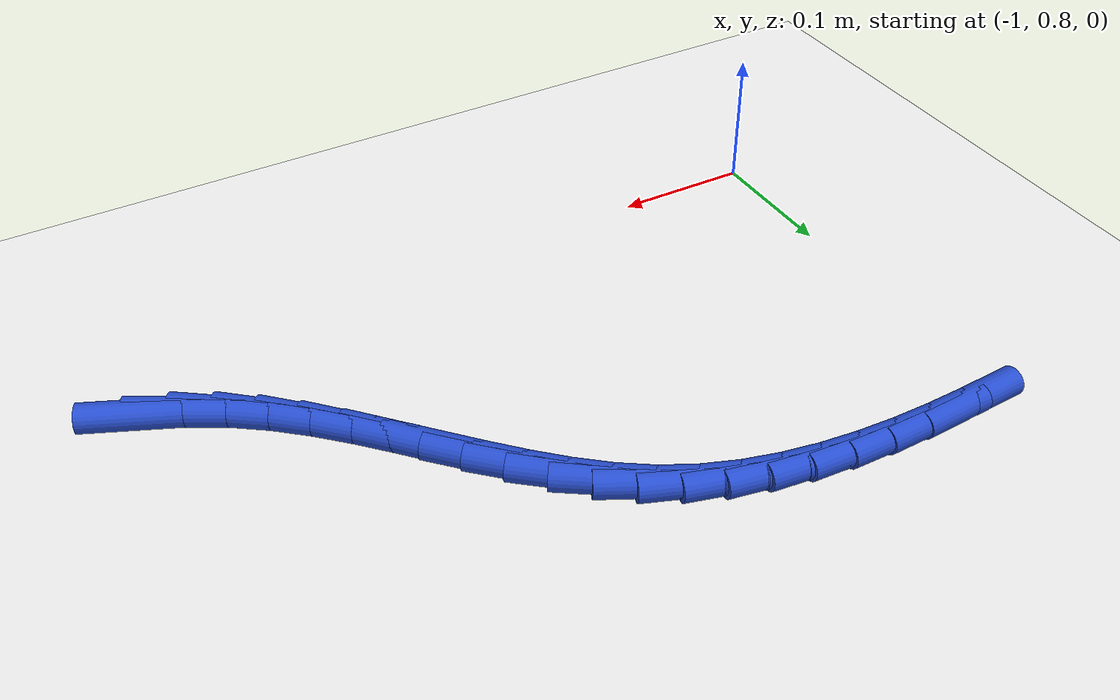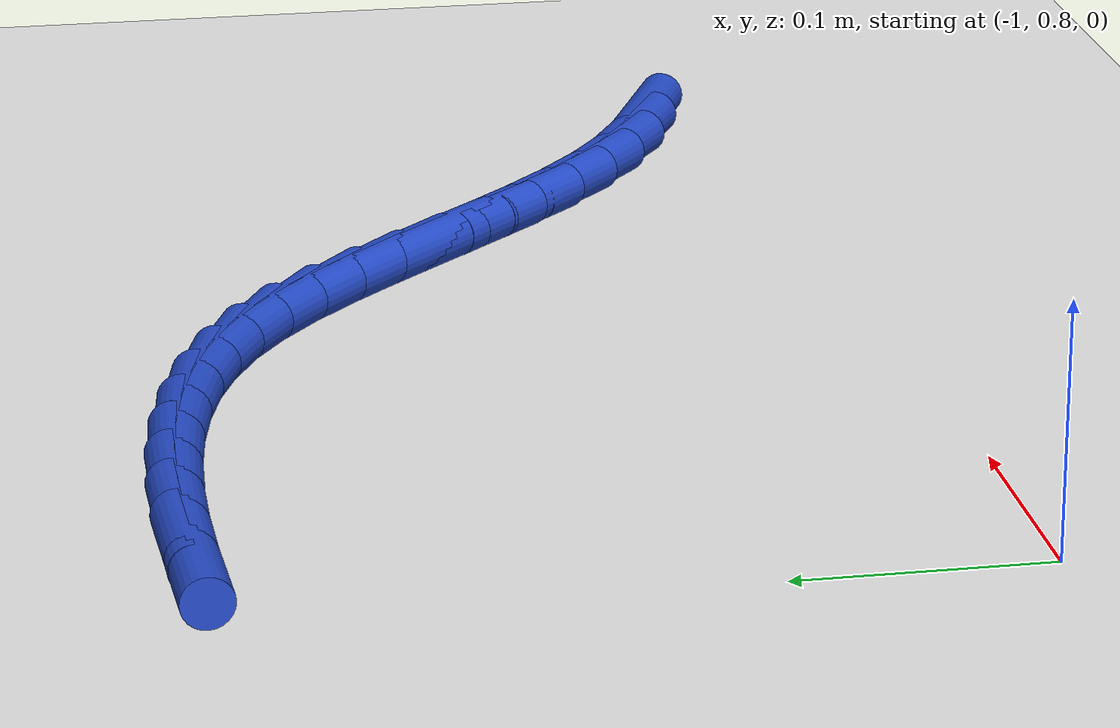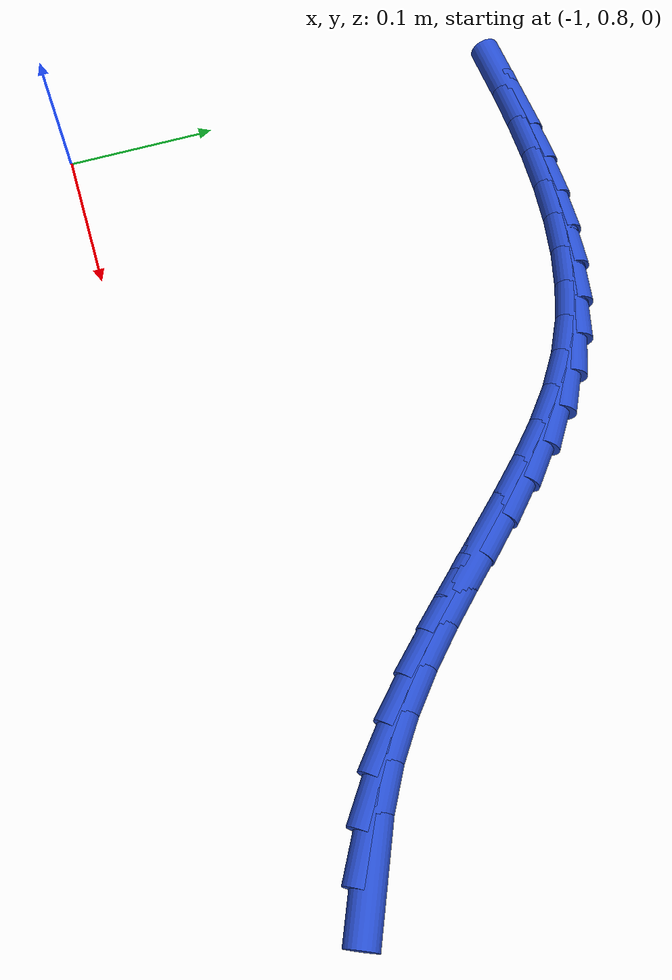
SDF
<sdf version="1.6">
 <world name="default">
  <model name="ground_plane">
   <static>1</static>
   <link name="link">
    <collision name="collision">
     <geometry><plane><normal>0 0 1</normal><size>100 100</size></plane></geometry>
     <surface><friction><ode><mu>100</mu><mu2>50</mu2></ode></friction></surface>
    </collision>
    <visual name="visual">
     <cast_shadows>0</cast_shadows>
     <geometry><plane><normal>0 0 1</normal><size>100 100</size></plane></geometry>
     <material>
      <script><uri>file://media/materials/scripts/gazebo.material</uri><name>Gazebo/WhiteGlow</name></script>
     </material>
    </visual>
   </link>
  </model>
  <model name="line">
   <link name="link_38">
    <pose>-0.49898464936281695 0.8584091857935302 0.01 0 1.57 -0.4158786364964564</pose>
    <collision name="collision">
     <geometry><cylinder><radius>0.01</radius><length>0.08</length></cylinder></geometry>
    </collision>
    <visual name="visual">
     <material>
      <script><name>Gazebo/Blue</name><uri>file://media/materials/scripts/gazebo.material</uri></script>
     </material>
     <geometry><cylinder><radius>0.01</radius><length>0.08</length></cylinder></geometry>
    </visual>
   </link>
   <link name="link_39">
    <pose>-0.5250209224987745 0.8699078018478746 0.01 0 1.57 -0.5147075791965274</pose>
    <collision name="collision">
     <geometry><cylinder><radius>0.01</radius><length>0.08</length></cylinder></geometry>
    </collision>
    <visual name="visual">
     <material>
      <script><name>Gazebo/Blue</name><uri>file://media/materials/scripts/gazebo.material</uri></script>
     </material>
     <geometry><cylinder><radius>0.01</radius><length>0.08</length></cylinder></geometry>
    </visual>
   </link>
   <link name="link_40">
    <pose>-0.5495181094205166 0.8837623225067062 0.01 0 1.57 -0.6187239867300558</pose>
    <collision name="collision">
     <geometry><cylinder><radius>0.01</radius><length>0.08</length></cylinder></geometry>
    </collision>
    <visual name="visual">
     <material>
      <script><name>Gazebo/Blue</name><uri>file://media/materials/scripts/gazebo.material</uri></script>
     </material>
     <geometry><cylinder><radius>0.01</radius><length>0.08</length></cylinder></geometry>
    </visual>
   </link>
   <link name="link_41">
    <pose>-0.5723600686253677 0.9000254412380728 0.01 0 1.57 -0.701814720372819</pose>
    <collision name="collision">
     <geometry><cylinder><radius>0.01</radius><length>0.08</length></cylinder></geometry>
    </collision>
    <visual name="visual">
     <material>
      <script><name>Gazebo/Blue</name><uri>file://media/materials/scripts/gazebo.material</uri></script>
     </material>
     <geometry><cylinder><radius>0.01</radius><length>0.08</length></cylinder></geometry>
    </visual>
   </link>
   <link name="link_42">
    <pose>-0.5938446284844653 0.9181883872963794 0.01 0 1.57 -0.7629746549043068</pose>
    <collision name="collision">
     <geometry><cylinder><radius>0.01</radius><length>0.08</length></cylinder></geometry>
    </collision>
    <visual name="visual">
     <material>
      <script><name>Gazebo/Blue</name><uri>file://media/materials/scripts/gazebo.material</uri></script>
     </material>
     <geometry><cylinder><radius>0.01</radius><length>0.08</length></cylinder></geometry>
    </visual>
   </link>
   <link name="link_43">
    <pose>-0.6142804592573747 0.9377276851646332 0.01 0 1.57 -0.8027682768963464</pose>
    <collision name="collision">
     <geometry><cylinder><radius>0.01</radius><length>0.08</length></cylinder></geometry>
    </collision>
    <visual name="visual">
     <material>
      <script><name>Gazebo/Blue</name><uri>file://media/materials/scripts/gazebo.material</uri></script>
     </material>
     <geometry><cylinder><radius>0.01</radius><length>0.08</length></cylinder></geometry>
    </visual>
   </link>
   <link name="link_44">
    <pose>-0.6339762312036605 0.9581198593258405 0.01 0 1.57 -0.8218246254023871</pose>
    <collision name="collision">
     <geometry><cylinder><radius>0.01</radius><length>0.08</length></cylinder></geometry>
    </collision>
    <visual name="visual">
     <material>
      <script><name>Gazebo/Blue</name><uri>file://media/materials/scripts/gazebo.material</uri></script>
     </material>
     <geometry><cylinder><radius>0.01</radius><length>0.08</length></cylinder></geometry>
    </visual>
   </link>
   <link name="link_45">
    <pose>-0.6532406145828885 0.9788414342630085 0.01 0 1.57 -0.8203187812267426</pose>
    <collision name="collision">
     <geometry><cylinder><radius>0.01</radius><length>0.08</length></cylinder></geometry>
    </collision>
    <visual name="visual">
     <material>
      <script><name>Gazebo/Blue</name><uri>file://media/materials/scripts/gazebo.material</uri></script>
     </material>
     <geometry><cylinder><radius>0.01</radius><length>0.08</length></cylinder></geometry>
    </visual>
   </link>
   <link name="link_46">
    <pose>-0.6723822796546233 0.9993689344591437 0.01 0 1.57 -0.7977215788457497</pose>
    <collision name="collision">
     <geometry><cylinder><radius>0.01</radius><length>0.08</length></cylinder></geometry>
    </collision>
    <visual name="visual">
     <material>
      <script><name>Gazebo/Blue</name><uri>file://media/materials/scripts/gazebo.material</uri></script>
     </material>
     <geometry><cylinder><radius>0.01</radius><length>0.08</length></cylinder></geometry>
    </visual>
   </link>
   <link name="link_47">
    <pose>-0.69170989667843 1.0191788843972531 0.01 0 1.57 -0.7527638277051322</pose>
    <collision name="collision">
     <geometry><cylinder><radius>0.01</radius><length>0.08</length></cylinder></geometry>
    </collision>
    <visual name="visual">
     <material>
      <script><name>Gazebo/Blue</name><uri>file://media/materials/scripts/gazebo.material</uri></script>
     </material>
     <geometry><cylinder><radius>0.01</radius><length>0.08</length></cylinder></geometry>
    </visual>
   </link>
   <link name="link_48">
    <pose>-0.7115321359138738 1.0377478085603429 0.01 0 1.57 -0.6836636817662294</pose>
    <collision name="collision">
     <geometry><cylinder><radius>0.01</radius><length>0.08</length></cylinder></geometry>
    </collision>
    <visual name="visual">
     <material>
      <script><name>Gazebo/Blue</name><uri>file://media/materials/scripts/gazebo.material</uri></script>
     </material>
     <geometry><cylinder><radius>0.01</radius><length>0.08</length></cylinder></geometry>
    </visual>
   </link>
   <link name="link_49">
    <pose>-0.73215766762052 1.0545522314314209 0.01 0 1.57 -0.5887919030432144</pose>
    <collision name="collision">
     <geometry><cylinder><radius>0.01</radius><length>0.08</length></cylinder></geometry>
    </collision>
    <visual name="visual">
     <material>
      <script><name>Gazebo/Blue</name><uri>file://media/materials/scripts/gazebo.material</uri></script>
     </material>
     <geometry><cylinder><radius>0.01</radius><length>0.08</length></cylinder></geometry>
    </visual>
   </link>
   <link name="link_50">
    <pose>-0.7538951566658616 1.0690686867431753 0.01 0 1.57 -0.47445630878375933</pose>
    <collision name="collision">
     <geometry><cylinder><radius>0.01</radius><length>0.08</length></cylinder></geometry>
    </collision>
    <visual name="visual">
     <material>
      <script><name>Gazebo/Blue</name><uri>file://media/materials/scripts/gazebo.material</uri></script>
     </material>
     <geometry><cylinder><radius>0.01</radius><length>0.08</length></cylinder></geometry>
    </visual>
   </link>
   <link name="link_51">
    <pose>-0.7769686414914742 1.0809188783145813 0.01 0 1.57 -0.3656989024934782</pose>
    <collision name="collision">
     <geometry><cylinder><radius>0.01</radius><length>0.08</length></cylinder></geometry>
    </collision>
    <visual name="visual">
     <material>
      <script><name>Gazebo/Blue</name><uri>file://media/materials/scripts/gazebo.material</uri></script>
     </material>
     <geometry><cylinder><radius>0.01</radius><length>0.08</length></cylinder></geometry>
    </visual>
   </link>
   <link name="link_52">
    <pose>-0.8013032989616099 1.090237183878206 0.01 0 1.57 -0.2695992211025664</pose>
    <collision name="collision">
     <geometry><cylinder><radius>0.01</radius><length>0.08</length></cylinder></geometry>
    </collision>
    <visual name="visual">
     <material>
      <script><name>Gazebo/Blue</name><uri>file://media/materials/scripts/gazebo.material</uri></script>
     </material>
     <geometry><cylinder><radius>0.01</radius><length>0.08</length></cylinder></geometry>
    </visual>
   </link>
   <link name="link_53">
    <pose>-0.8267583646446277 1.0972710983579699 0.01 0 1.57 -0.1868279581467998</pose>
    <collision name="collision">
     <geometry><cylinder><radius>0.01</radius><length>0.08</length></cylinder></geometry>
    </collision>
    <visual name="visual">
     <material>
      <script><name>Gazebo/Blue</name><uri>file://media/materials/scripts/gazebo.material</uri></script>
     </material>
     <geometry><cylinder><radius>0.01</radius><length>0.08</length></cylinder></geometry>
    </visual>
   </link>
   <link name="link_54">
    <pose>-0.8531930741088881 1.102268116677797 0.01 0 1.57 -0.11707111752358872</pose>
    <collision name="collision">
     <geometry><cylinder><radius>0.01</radius><length>0.08</length></cylinder></geometry>
    </collision>
    <visual name="visual">
     <material>
      <script><name>Gazebo/Blue</name><uri>file://media/materials/scripts/gazebo.material</uri></script>
     </material>
     <geometry><cylinder><radius>0.01</radius><length>0.08</length></cylinder></geometry>
    </visual>
   </link>
   <link name="link_55">
    <pose>-0.8804666629227509 1.1054757337616095 0.01 0 1.57 -0.05947960817188597</pose>
    <collision name="collision">
     <geometry><cylinder><radius>0.01</radius><length>0.08</length></cylinder></geometry>
    </collision>
    <visual name="visual">
     <material>
      <script><name>Gazebo/Blue</name><uri>file://media/materials/scripts/gazebo.material</uri></script>
     </material>
     <geometry><cylinder><radius>0.01</radius><length>0.08</length></cylinder></geometry>
    </visual>
   </link>
   <link name="link_56">
    <pose>-0.9084383666545763 1.1071414445333292 0.01 0 1.57 -0.013014045916830596</pose>
    <collision name="collision">
     <geometry><cylinder><radius>0.01</radius><length>0.08</length></cylinder></geometry>
    </collision>
    <visual name="visual">
     <material>
      <script><name>Gazebo/Blue</name><uri>file://media/materials/scripts/gazebo.material</uri></script>
     </material>
     <geometry><cylinder><radius>0.01</radius><length>0.08</length></cylinder></geometry>
    </visual>
   </link>
   <link name="link_57">
    <pose>-0.9369674208727242 1.1075127439168797 0.01 0 1.57 0.023336655295008665</pose>
    <collision name="collision">
     <geometry><cylinder><radius>0.01</radius><length>0.08</length></cylinder></geometry>
    </collision>
    <visual name="visual">
     <material>
      <script><name>Gazebo/Blue</name><uri>file://media/materials/scripts/gazebo.material</uri></script>
     </material>
     <geometry><cylinder><radius>0.01</radius><length>0.08</length></cylinder></geometry>
    </visual>
   </link>
   <link name="link_58">
    <pose>-0.965913061145555 1.1068371268361825 0.01 0 1.57 0.05043511267824467</pose>
    <collision name="collision">
     <geometry><cylinder><radius>0.01</radius><length>0.08</length></cylinder></geometry>
    </collision>
    <visual name="visual">
     <material>
      <script><name>Gazebo/Blue</name><uri>file://media/materials/scripts/gazebo.material</uri></script>
     </material>
     <geometry><cylinder><radius>0.01</radius><length>0.08</length></cylinder></geometry>
    </visual>
   </link>
  </model>
 </world>
</sdf>
